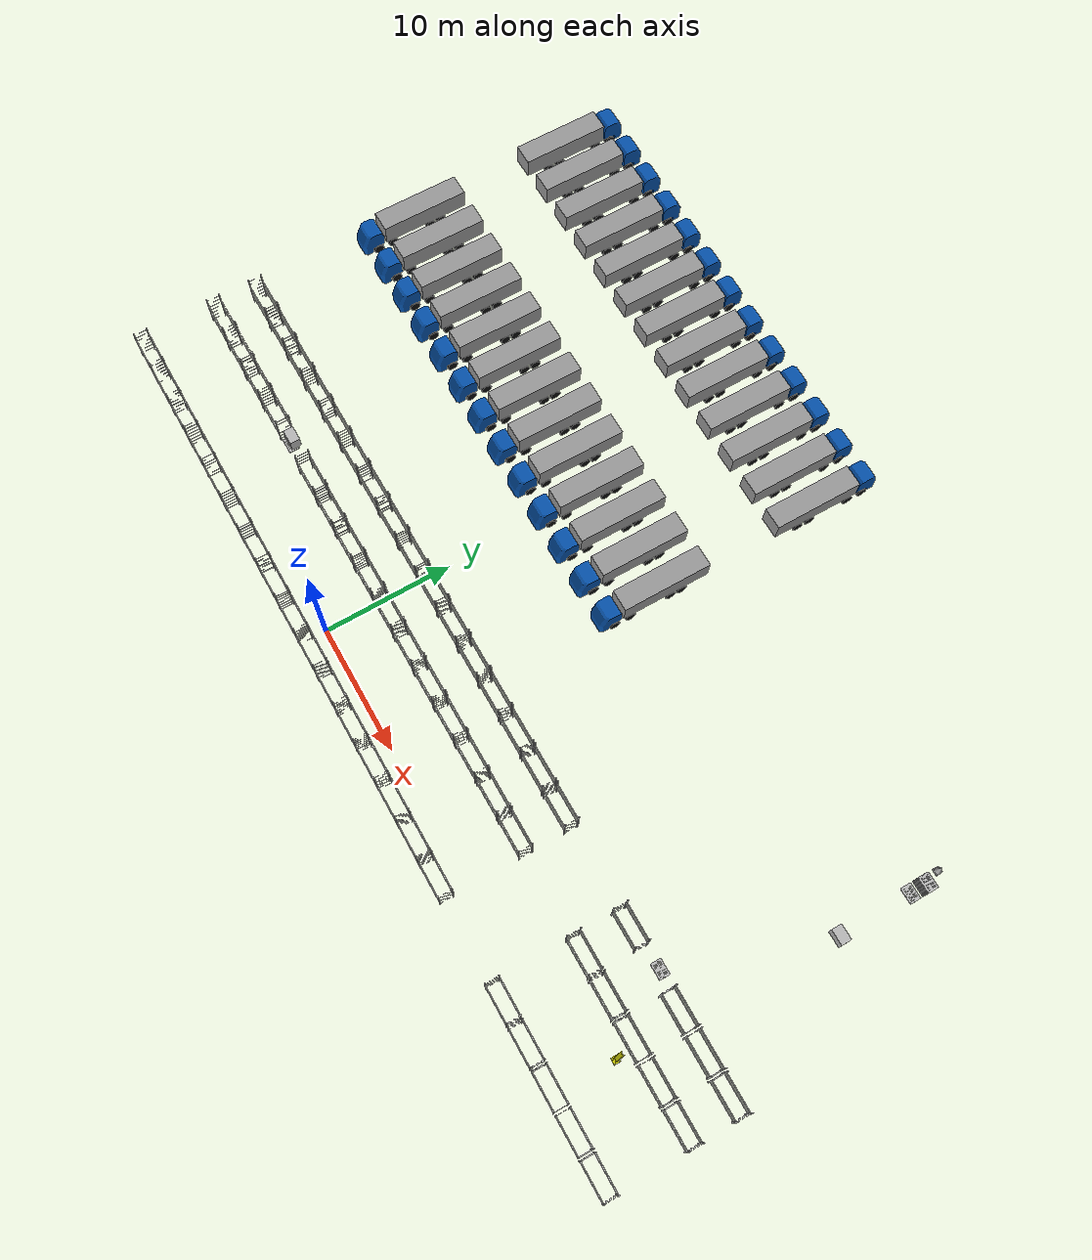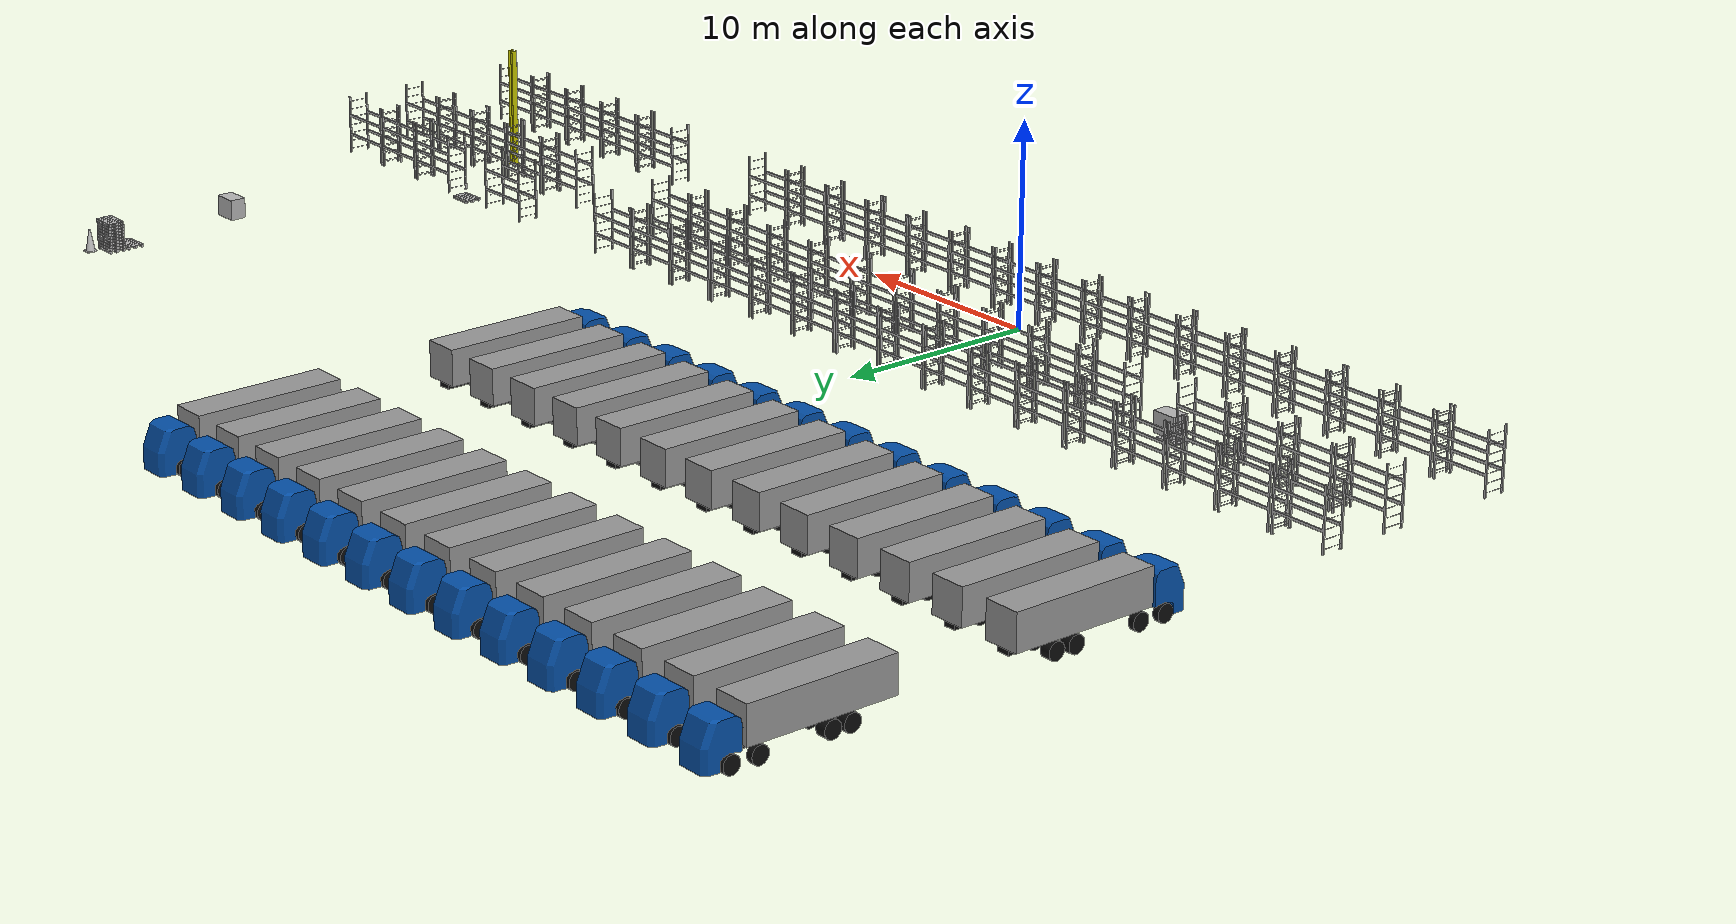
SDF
<sdf version="1.7">
 <world name="default">
  <include><uri>model://ground_collision</uri></include>
  <physics name="default_physics" default="0" type="ode">
   <real_time_factor>0.1</real_time_factor>
   <real_time_update_rate>1000</real_time_update_rate>
  </physics>
  <scene><ambient>1.0 1.0 1.0 1.0</ambient><background>0.8 0.8 0.8 1.0</background></scene>
  <light type="directional" name="sun">
   <cast_shadows>false</cast_shadows>
   <pose>0 0 10 0 0 0</pose>
   <diffuse>0.8 0.8 0.8 1</diffuse>
   <specular>0.2 0.2 0.2 1</specular>
   <attenuation>
    <range>1000</range>
    <constant>0.9</constant>
    <linear>0.01</linear>
    <quadratic>0.001</quadratic>
   </attenuation>
   <direction>0.1 0.1 -0.9</direction>
  </light>
  <include>
   <static>1</static>
   <uri>model://shelf</uri>
   <name>shelf_wall_1_2</name>
   <pose>-27 -2  0.001 0 0 0</pose>
  </include>
  <include>
   <static>1</static>
   <uri>model://shelf</uri>
   <name>shelf_wall_1_3</name>
   <pose>-24 -2  0.001 0 0 0</pose>
  </include>
  <include>
   <static>1</static>
   <uri>model://shelf</uri>
   <name>shelf_wall_1_4</name>
   <pose>-21 -2  0.001 0 0 0</pose>
  </include>
  <include>
   <static>1</static>
   <uri>model://shelf</uri>
   <name>shelf_wall_1_5</name>
   <pose>-18 -2  0.001 0 0 0</pose>
  </include>
  <include>
   <static>1</static>
   <uri>model://shelf</uri>
   <name>shelf_wall_1_6</name>
   <pose>-15 -2  0.001 0 0 0</pose>
  </include>
  <include>
   <static>1</static>
   <uri>model://shelf</uri>
   <name>shelf_wall_1_7</name>
   <pose>-12 -2  0.001 0 0 0</pose>
  </include>
  <include>
   <static>1</static>
   <uri>model://shelf</uri>
   <name>shelf_wall_1_8</name>
   <pose>-9 -2  0.001 0 0 0</pose>
  </include>
  <include>
   <static>1</static>
   <uri>model://shelf</uri>
   <name>shelf_wall_1_9</name>
   <pose>-6 -2  0.001 0 0 0</pose>
  </include>
  <include>
   <static>1</static>
   <uri>model://shelf</uri>
   <name>shelf_wall_1_10</name>
   <pose>-3 -2  0.001 0 0 0</pose>
  </include>
  <include>
   <static>1</static>
   <uri>model://shelf</uri>
   <name>shelf_wall_1_11</name>
   <pose>0 -2  0.001 0 0 0</pose>
  </include>
  <include>
   <static>1</static>
   <uri>model://shelf</uri>
   <name>shelf_wall_1_12</name>
   <pose>3 -2  0.001 0 0 0</pose>
  </include>
  <include>
   <static>1</static>
   <uri>model://shelf</uri>
   <name>shelf_wall_1_13</name>
   <pose>6 -2  0.001 0 0 0</pose>
  </include>
  <include>
   <static>1</static>
   <uri>model://shelf</uri>
   <name>shelf_wall_1_14</name>
   <pose>9 -2  0.001 0 0 0</pose>
  </include>
  <include>
   <static>1</static>
   <uri>model://shelf</uri>
   <name>shelf_wall_1_15</name>
   <pose>12 -2  0.001 0 0 0</pose>
  </include>
  <include>
   <static>1</static>
   <uri>model://shelf</uri>
   <name>shelf_wall_1_16</name>
   <pose>15 -2  0.001 0 0 0</pose>
  </include>
  <include>
   <static>1</static>
   <uri>model://shelf</uri>
   <name>shelf_wall_1_17</name>
   <pose>18 -2  0.001 0 0 0</pose>
  </include>
  <include>
   <static>1</static>
   <uri>model://shelf</uri>
   <name>shelf_wall_1_20</name>
   <pose>27 -2  0.001 0 0 0</pose>
  </include>
  <include>
   <static>1</static>
   <uri>model://shelf</uri>
   <name>shelf_wall_1_21</name>
   <pose>30 -2  0.001 0 0 0</pose>
  </include>
  <include>
   <static>1</static>
   <uri>model://shelf</uri>
   <name>shelf_wall_1_22</name>
   <pose>33 -2  0.001 0 0 0</pose>
  </include>
  <include>
   <static>1</static>
   <uri>model://shelf</uri>
   <name>shelf_wall_1_23</name>
   <pose>36 -2  0.001 0 0 0</pose>
  </include>
  <include>
   <static>1</static>
   <uri>model://shelf</uri>
   <name>shelf_wall_1_24</name>
   <pose>39 -2  0.001 0 0 0</pose>
  </include>
  <include>
   <static>1</static>
   <uri>model://shelf</uri>
   <name>shelf_wall_2_2</name>
   <pose>-27 4  0.001 0 0 0</pose>
  </include>
  <include>
   <static>1</static>
   <uri>model://shelf</uri>
   <name>shelf_wall_2_3</name>
   <pose>-24 4  0.001 0 0 0</pose>
  </include>
  <include>
   <static>1</static>
   <uri>model://shelf</uri>
   <name>shelf_wall_2_4</name>
   <pose>-21 4  0.001 0 0 0</pose>
  </include>
  <include>
   <static>1</static>
   <uri>model://shelf</uri>
   <name>shelf_wall_2_5</name>
   <pose>-18 4  0.001 0 0 0</pose>
  </include>
  <include>
   <static>1</static>
   <uri>model://shelf</uri>
   <name>shelf_wall_2_7</name>
   <pose>-12 4  0.001 0 0 0</pose>
  </include>
  <include>
   <static>1</static>
   <uri>model://shelf</uri>
   <name>shelf_wall_2_8</name>
   <pose>-9 4  0.001 0 0 0</pose>
  </include>
  <include>
   <static>1</static>
   <uri>model://shelf</uri>
   <name>shelf_wall_2_9</name>
   <pose>-6 4  0.001 0 0 0</pose>
  </include>
  <include>
   <static>1</static>
   <uri>model://shelf</uri>
   <name>shelf_wall_2_10</name>
   <pose>-3 4  0.001 0 0 0</pose>
  </include>
  <include>
   <static>1</static>
   <uri>model://shelf</uri>
   <name>shelf_wall_2_11</name>
   <pose>0 4  0.001 0 0 0</pose>
  </include>
  <include>
   <static>1</static>
   <uri>model://shelf</uri>
   <name>shelf_wall_2_12</name>
   <pose>3 4  0.001 0 0 0</pose>
  </include>
  <include>
   <static>1</static>
   <uri>model://shelf</uri>
   <name>shelf_wall_2_13</name>
   <pose>6 4  0.001 0 0 0</pose>
  </include>
  <include>
   <static>1</static>
   <uri>model://shelf</uri>
   <name>shelf_wall_2_14</name>
   <pose>9 4  0.001 0 0 0</pose>
  </include>
  <include>
   <static>1</static>
   <uri>model://shelf</uri>
   <name>shelf_wall_2_15</name>
   <pose>12 4  0.001 0 0 0</pose>
  </include>
  <include>
   <static>1</static>
   <uri>model://shelf</uri>
   <name>shelf_wall_2_16</name>
   <pose>15 4  0.001 0 0 0</pose>
  </include>
  <include>
   <static>1</static>
   <uri>model://shelf</uri>
   <name>shelf_wall_2_17</name>
   <pose>18 4  0.001 0 0 0</pose>
  </include>
  <include>
   <static>1</static>
   <uri>model://shelf</uri>
   <name>shelf_wall_2_20</name>
   <pose>27 4  0.001 0 0 0</pose>
  </include>
  <include>
   <static>1</static>
   <uri>model://shelf</uri>
   <name>shelf_wall_2_21</name>
   <pose>30 4  0.001 0 0 0</pose>
  </include>
  <include>
   <static>1</static>
   <uri>model://shelf</uri>
   <name>shelf_wall_2_22</name>
   <pose>33 4  0.001 0 0 0</pose>
  </include>
  <include>
   <static>1</static>
   <uri>model://shelf</uri>
   <name>shelf_wall_2_23</name>
   <pose>36 4  0.001 0 0 0</pose>
  </include>
  <include>
   <static>1</static>
   <uri>model://shelf</uri>
   <name>shelf_wall_2_24</name>
   <pose>39 4  0.001 0 0 0</pose>
  </include>
  <include>
   <static>1</static>
   <uri>model://shelf</uri>
   <name>shelf_wall_3_2</name>
   <pose>-27 7.5  0.001 0 0 0</pose>
  </include>
  <include>
   <static>1</static>
   <uri>model://shelf</uri>
   <name>shelf_wall_3_3</name>
   <pose>-24 7.5  0.001 0 0 0</pose>
  </include>
  <include>
   <static>1</static>
   <uri>model://shelf</uri>
   <name>shelf_wall_3_4</name>
   <pose>-21 7.5  0.001 0 0 0</pose>
  </include>
  <include>
   <static>1</static>
   <uri>model://shelf</uri>
   <name>shelf_wall_3_5</name>
   <pose>-18 7.5  0.001 0 0 0</pose>
  </include>
  <include>
   <static>1</static>
   <uri>model://shelf</uri>
   <name>shelf_wall_3_6</name>
   <pose>-15 7.5  0.001 0 0 0</pose>
  </include>
  <include>
   <static>1</static>
   <uri>model://shelf</uri>
   <name>shelf_wall_3_7</name>
   <pose>-12 7.5  0.001 0 0 0</pose>
  </include>
  <include>
   <static>1</static>
   <uri>model://shelf</uri>
   <name>shelf_wall_3_8</name>
   <pose>-9 7.5  0.001 0 0 0</pose>
  </include>
  <include>
   <static>1</static>
   <uri>model://shelf</uri>
   <name>shelf_wall_3_9</name>
   <pose>-6 7.5  0.001 0 0 0</pose>
  </include>
  <include>
   <static>1</static>
   <uri>model://shelf</uri>
   <name>shelf_wall_3_10</name>
   <pose>-3 7.5  0.001 0 0 0</pose>
  </include>
  <include>
   <static>1</static>
   <uri>model://shelf</uri>
   <name>shelf_wall_3_11</name>
   <pose>0 7.5  0.001 0 0 0</pose>
  </include>
  <include>
   <static>1</static>
   <uri>model://shelf</uri>
   <name>shelf_wall_3_12</name>
   <pose>3 7.5  0.001 0 0 0</pose>
  </include>
  <include>
   <static>1</static>
   <uri>model://shelf</uri>
   <name>shelf_wall_3_13</name>
   <pose>6 7.5  0.001 0 0 0</pose>
  </include>
  <include>
   <static>1</static>
   <uri>model://shelf</uri>
   <name>shelf_wall_3_14</name>
   <pose>9 7.5  0.001 0 0 0</pose>
  </include>
  <include>
   <static>1</static>
   <uri>model://shelf</uri>
   <name>shelf_wall_3_15</name>
   <pose>12 7.5  0.001 0 0 0</pose>
  </include>
  <include>
   <static>1</static>
   <uri>model://shelf</uri>
   <name>shelf_wall_3_16</name>
   <pose>15 7.5  0.001 0 0 0</pose>
  </include>
  <include>
   <static>1</static>
   <uri>model://shelf</uri>
   <name>shelf_wall_3_17</name>
   <pose>18 7.5  0.001 0 0 0</pose>
  </include>
  <include>
   <static>1</static>
   <uri>model://shelf</uri>
   <name>shelf_wall_3_20</name>
   <pose>27 7.5  0.001 0 0 0</pose>
  </include>
  <include>
   <static>1</static>
   <uri>model://shelf</uri>
   <name>shelf_wall_3_22</name>
   <pose>33 7.5  0.001 0 0 0</pose>
  </include>
  <include>
   <static>1</static>
   <uri>model://shelf</uri>
   <name>shelf_wall_3_23</name>
   <pose>36 7.5  0.001 0 0 0</pose>
  </include>
  <include>
   <static>1</static>
   <uri>model://shelf</uri>
   <name>shelf_wall_3_24</name>
   <pose>39 7.5  0.001 0 0 0</pose>
  </include>
  <include><uri>model://eur_pallet</uri><name>pallet_group_pickup</name><pose>-15 4 0.001 0 0 0</pose></include>
  <include>
   <uri>model://box_1185x785x1010</uri>
   <name>box_group_pickup</name>
   <pose>-15  5 0.4 0 0 0</pose>
  </include>
  <include>
   <uri>model://eur_pallet</uri>
   <name>pallet_group_dropoff</name>
   <pose>31 8 0.001 0 -0 0</pose>
  </include>
  <include>
   <static>1</static>
   <uri>model://support_pole</uri>
   <name>support_pole_move</name>
   <pose>35 3 0.001 0 0 0</pose>
  </include>
  <include><uri>model://box_1185x785x1010</uri><name>box_move</name><pose>35 20 0.4 0 0 0</pose></include>
  <include><uri>model://eur_pallet</uri><name>pallet_stack1_n1</name><pose>35 25 0.1 0 0 0</pose></include>
  <include><uri>model://eur_pallet</uri><name>pallet_stack2_n1</name><pose>35 26 0.1 0 0 0</pose></include>
  <include><uri>model://eur_pallet</uri><name>pallet_stack2_n2</name><pose>35 26 0.25 0 0 0</pose></include>
  <include><uri>model://eur_pallet</uri><name>pallet_stack2_n3</name><pose>35 26 0.4 0 0 0</pose></include>
  <include><uri>model://eur_pallet</uri><name>pallet_stack2_n4</name><pose>35 26 0.55 0 0 0</pose></include>
  <include><uri>model://eur_pallet</uri><name>pallet_stack2_n5</name><pose>35 26 0.7 0 0 0</pose></include>
  <include><uri>model://eur_pallet</uri><name>pallet_stack2_n6</name><pose>35 26 0.85 0 0 0</pose></include>
  <include><uri>model://eur_pallet</uri><name>pallet_stack2_n7</name><pose>35 26 1.0 0 0 0</pose></include>
  <include><uri>model://eur_pallet</uri><name>pallet_stack2_n8</name><pose>35 26 1.15 0 0 0</pose></include>
  <include><uri>model://eur_pallet</uri><name>pallet_stack2_n9</name><pose>35 26 1.3 0 0 0</pose></include>
  <include><uri>model://eur_pallet</uri><name>pallet_stack2_n10</name><pose>35 26 1.45 0 0 0</pose></include>
  <include><uri>model://truck</uri><name>truck1</name><pose>9 21 0.01 0 0 0</pose></include>
  <include><uri>model://truck</uri><name>truck2</name><pose>6 21 0.01 0 0 0</pose></include>
  <include><uri>model://truck</uri><name>truck3</name><pose>3 21 0.01 0 0 0</pose></include>
  <include><uri>model://truck</uri><name>truck4</name><pose>0 21 0.01 0 0 0</pose></include>
  <include><uri>model://truck</uri><name>truck5</name><pose>-3 21 0.01 0 0 0</pose></include>
  <include><uri>model://truck</uri><name>truck6</name><pose>-6 21 0.01 0 0 0</pose></include>
  <include><uri>model://truck</uri><name>truck7</name><pose>-9 21 0.01 0 0 0</pose></include>
  <include><uri>model://truck</uri><name>truck8</name><pose>-12 21 0.01 0 0 0</pose></include>
  <include><uri>model://truck</uri><name>truck9</name><pose>-15 21 0.01 0 0 0</pose></include>
  <include><uri>model://truck</uri><name>truck10</name><pose>-18 21 0.01 0 0 0</pose></include>
  <include><uri>model://truck</uri><name>truck11</name><pose>-21 21 0.01 0 0 0</pose></include>
  <include><uri>model://truck</uri><name>truck12</name><pose>-24 21 0.01 0 0 0</pose></include>
  <include><uri>model://truck</uri><name>truck13</name><pose>-27 21 0.01 0 0 0</pose></include>
  <include><uri>model://truck</uri><name>truck14</name><pose>9 36 0.01 0 0 3.1415926535</pose></include>
  <include><uri>model://truck</uri><name>truck15</name><pose>6 36 0.01 0 0 3.1415926535</pose></include>
  <include><uri>model://truck</uri><name>truck16</name><pose>3 36 0.01 0 0 3.1415926535</pose></include>
  <include><uri>model://truck</uri><name>truck17</name><pose>0 36 0.01 0 0 3.1415926535</pose></include>
  <include><uri>model://truck</uri><name>truck18</name><pose>-3 36 0.01 0 0 3.1415926535</pose></include>
  <include><uri>model://truck</uri><name>truck19</name><pose>-6 36 0.01 0 0 3.1415926535</pose></include>
  <include><uri>model://truck</uri><name>truck20</name><pose>-9 36 0.01 0 0 3.1415926535</pose></include>
  <include><uri>model://truck</uri><name>truck21</name><pose>-12 36 0.01 0 0 3.1415926535</pose></include>
  <include><uri>model://truck</uri><name>truck22</name><pose>-15 36 0.01 0 0 3.1415926535</pose></include>
  <include><uri>model://truck</uri><name>truck23</name><pose>-18 36 0.01 0 0 3.1415926535</pose></include>
  <include><uri>model://truck</uri><name>truck24</name><pose>-21 36 0.01 0 0 3.1415926535</pose></include>
  <include><uri>model://truck</uri><name>truck25</name><pose>-24 36 0.01 0 0 3.1415926535</pose></include>
  <include><uri>model://truck</uri><name>truck26</name><pose>-27 36 0.01 0 0 3.1415926535</pose></include>
  <include><uri>model://traffic_cone</uri><name>traffic_cone</name><pose>35 28 0.4 0 0 0</pose></include>
  <light name="user_spot_light_move" type="spot">
   <pose>20.0 20.0 1 0 0 0</pose>
   <diffuse>0.5 0.5 0.5 1</diffuse>
   <specular>0.1 0.1 0.1 1</specular>
   <direction>0 0 -1</direction>
   <attenuation>
    <range>20</range>
    <constant>0.5</constant>
    <linear>0.01</linear>
    <quadratic>0.001</quadratic>
   </attenuation>
   <cast_shadows>0</cast_shadows>
   <spot><inner_angle>0.6</inner_angle><outer_angle>1</outer_angle><falloff>1</falloff></spot>
  </light>
  <plugin name="gazebo_ros_state" filename="libgazebo_ros_state.so">
   <ros><namespace>/gazebo</namespace></ros>
   <update_rate>1.0</update_rate>
  </plugin>
 </world>
</sdf>

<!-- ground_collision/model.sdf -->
<sdf version="1.9">
<model name="ground_collision">
  <static>true</static>
    <link name="link">
      <collision name="collision">
        <geometry>
          <plane>
            <normal>0 0 1</normal>
            <size>100 100</size>
          </plane>
        </geometry>
        <surface>
          <friction>
            <ode>
              <mu>100</mu>
              <mu2>50</mu2>
            </ode>
          </friction>
        </surface>
      </collision>
    </link>
  </model>
</sdf>

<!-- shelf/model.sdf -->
<sdf version="1.9">
  <model name="shelf" canonical_link="node0_link">

    <link name="node0_link">
      <inertial>
        <inertia>
          <ixx>24.93052</ixx>
          <ixy>0</ixy>
          <ixz>0</ixz>
          <iyy>54.42990</iyy>
          <iyz>0</iyz>
          <izz>42.61899</izz>
        </inertia>
        <pose>1.44044 0.43986 1.49318 0 0 0</pose>
        <mass>40.00000</mass>
      </inertial>

      <visual name="node0">
        <pose>0 0 0 0 0 0</pose>
        <geometry>
          <mesh>
            <uri>model://shelf/meshes/textured_shelf_low_poly.dae</uri>
            <scale>1.00000 1.00000 1.00000</scale>
          </mesh>
        </geometry>
      </visual>
    </link>

    <plugin filename="gz-sim-label-system" name="gz::sim::systems::Label">
      <label>10</label>
    </plugin>

    <link name="collision_shelf_1">
      <inertial>
        <mass>0.0001</mass>
        <inertia>
          <ixx>1e-6</ixx>
          <iyy>1e-6</iyy>
          <izz>1e-6</izz>
          <ixy>0</ixy>
          <ixz>0</ixz>
          <iyz>0</iyz>
        </inertia>
      </inertial>
      <collision name="collision_shelf_1">
        <pose>1.45 0.45 0 0 0 0</pose>
        <geometry>
          <box>
            <size>2.7 1.2 0.13</size>
          </box>
        </geometry>
        <surface>
          <friction>
            <ode>
              <mu>1</mu>
              <mu2>1</mu2>
              <slip1>0</slip1>
              <slip2>0</slip2>
            </ode>
          </friction>
          <contact>
            <ode>
              <soft_cfm>0</soft_cfm>
              <soft_erp>0.2</soft_erp>
              <kp>1e+13</kp>
              <kd>1</kd>
              <max_vel>0.01</max_vel>
              <min_depth>0</min_depth>
            </ode>
          </contact>
        </surface>
      </collision>
    </link>

    <link name="collision_shelf_2">
      <inertial>
        <mass>0.0001</mass>
        <inertia>
          <ixx>1e-6</ixx>
          <iyy>1e-6</iyy>
          <izz>1e-6</izz>
          <ixy>0</ixy>
          <ixz>0</ixz>
          <iyz>0</iyz>
        </inertia>
      </inertial>
      <collision name="collision_shelf_2">
        <pose>1.45 0.45 1 0 0 0</pose>
        <geometry>
          <box>
            <size>2.7 1.2 0.13</size>
          </box>
        </geometry>
        <surface>
          <friction>
            <ode>
              <mu>1</mu>
              <mu2>1</mu2>
              <slip1>0</slip1>
              <slip2>0</slip2>
            </ode>
          </friction>
          <contact>
            <ode>
              <soft_cfm>0</soft_cfm>
              <soft_erp>0.2</soft_erp>
              <kp>1e+13</kp>
              <kd>1</kd>
              <max_vel>0.01</max_vel>
              <min_depth>0</min_depth>
            </ode>
          </contact>
        </surface>
      </collision>
    </link>

    <link name="collision_shelf_3">
      <inertial>
        <mass>0.0001</mass>
        <inertia>
          <ixx>1e-6</ixx>
          <iyy>1e-6</iyy>
          <izz>1e-6</izz>
          <ixy>0</ixy>
          <ixz>0</ixz>
          <iyz>0</iyz>
        </inertia>
      </inertial>
      <collision name="collision_shelf_3">
        <pose>1.45 0.45 2 0 0 0</pose>
        <geometry>
          <box>
            <size>2.7 1.2 0.13</size>
          </box>
        </geometry>
        <surface>
          <friction>
            <ode>
              <mu>1</mu>
              <mu2>1</mu2>
              <slip1>0</slip1>
              <slip2>0</slip2>
            </ode>
          </friction>
          <contact>
            <ode>
              <soft_cfm>0</soft_cfm>
              <soft_erp>0.2</soft_erp>
              <kp>1e+13</kp>
              <kd>1</kd>
              <max_vel>0.01</max_vel>
              <min_depth>0</min_depth>
            </ode>
          </contact>
        </surface>
      </collision>
    </link>

    <joint name="fixed_joint_1" type="fixed">
      <parent>node0_link</parent>
      <child>collision_shelf_1</child>
    </joint>

    <joint name="fixed_joint_2" type="fixed">
      <parent>node0_link</parent>
      <child>collision_shelf_2</child>
    </joint>

    <joint name="fixed_joint_3" type="fixed">
      <parent>node0_link</parent>
      <child>collision_shelf_3</child>
    </joint>

  </model>
</sdf>

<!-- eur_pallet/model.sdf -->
<sdf version="1.9">
<model name="eur_pallet" canonical_link="node0_link">
  <link name="node0_link">
    <visual name="node0">
      <pose>0 0 0 0 0 0</pose>
      <geometry>
        <mesh>
          <uri>model://eur_pallet/meshes/textured_pallet.dae</uri>
          <scale>1.00000 1.00000 1.00000</scale>
        </mesh>
      </geometry>
    </visual>
  </link>

  <link name="collision_holder_1">
    <inertial>
      <inertia>
        <ixx>0.006</ixx>
        <ixy>0</ixy>
        <ixz>0</ixz>
        <iyy>0.435</iyy>
        <iyz>0</iyz>
        <izz>0.435</izz>
      </inertia>
      <pose>0.6 0.05 0.05 0 0 0</pose>
      <mass>3.6</mass>
    </inertial>
    <collision name="collision_holder_1">
      <pose>0.6 0.05 0.05 0.0 0.0 0.0</pose>
      <geometry>
        <box>
          <size>1.2 0.1 0.1</size>
        </box>
      </geometry>
      <surface>
      <friction>
        <ode>
          <mu>1</mu>
          <mu2>1</mu2>
          <slip1>0</slip1>
          <slip2>0</slip2>
        </ode>
      </friction>
      <contact>
        <ode>
          <soft_cfm>1e-5</soft_cfm>
          <soft_erp>0.2</soft_erp>
          <kp>1e+13</kp>
          <kd>1</kd>
          <max_vel>0.01</max_vel>
          <min_depth>0</min_depth>
        </ode>
      </contact>
      </surface>
    </collision>
  </link>

  <link name="collision_holder_2">
    <inertial>
      <inertia>
        <ixx>0.013496</ixx>
        <ixy>0</ixy>
        <ixz>0</ixz>
        <iyy>0.6308</iyy>
        <iyz>0</iyz>
        <izz>0.6355</izz>
      </inertia>
      <pose>0.6 0.4 0.05 0 0 0</pose>
      <mass>5.22</mass>
    </inertial>
    <collision name="collision_holder_2">
      <pose>0.6 0.4 0.05 0 0 0</pose>
      <geometry>
        <box>
          <size>1.2 0.145 0.1</size>
        </box>
      </geometry>
      <surface>
      <friction>
        <ode>
          <mu>1</mu>
          <mu2>1</mu2>
          <slip1>0</slip1>
          <slip2>0</slip2>
        </ode>
      </friction>
      <contact>
        <ode>
          <soft_cfm>1e-5</soft_cfm>
          <soft_erp>0.2</soft_erp>
          <kp>1e+13</kp>
          <kd>1</kd>
          <max_vel>0.01</max_vel>
          <min_depth>0</min_depth>
        </ode>
      </contact>
      </surface>

    </collision>
  </link>

  <link name="collision_holder_3">
    <inertial>
      <inertia>
        <ixx>0.006</ixx>
        <ixy>0</ixy>
        <ixz>0</ixz>
        <iyy>0.435</iyy>
        <iyz>0</iyz>
        <izz>0.435</izz>
      </inertia>
      <pose>0.6 0.75 0.05 0 0 0</pose>
      <mass>3.6</mass>
    </inertial>
    <collision name="collision_holder_3">
      <pose>0.6 0.75 0.05 0 0 0</pose>
      <geometry>
        <box>
          <size>1.2 0.1 0.1</size>
        </box>
      </geometry>
      <surface>
      <friction>
        <ode>
          <mu>1</mu>
          <mu2>1</mu2>
          <slip1>0</slip1>
          <slip2>0</slip2>
        </ode>
      </friction>
      <contact>
        <ode>
          <soft_cfm>1e-5</soft_cfm>
          <soft_erp>0.2</soft_erp>
          <kp>1e+13</kp>
          <kd>1</kd>
          <max_vel>0.01</max_vel>
          <min_depth>0</min_depth>
        </ode>
      </contact>
      </surface>

    </collision>
  </link>

  <link name="collision_holder_surface">
    <inertial>
      <inertia>
        <ixx>0.6779</ixx>
        <ixy>0</ixy>
        <ixz>0</ixz>
        <iyy>1.5227</iyy>
        <iyz>0</iyz>
        <izz>2.1965</izz>
      </inertia>
      <pose>0.6 0.4 0.122 0 0 0</pose>
      <mass>12.672</mass>
    </inertial>
    <collision name="collision_holder_surface">
      <pose>0.6 0.4 0.122 0 0 0</pose>
      <geometry>
        <box>
          <size>1.2 0.8 0.044</size>
        </box>
      </geometry>
      <surface>
      <friction>
        <ode>
          <mu>1</mu>
          <mu2>1</mu2>
          <slip1>0</slip1>
          <slip2>0</slip2>
        </ode>
      </friction>
      <contact>
        <ode>
          <soft_cfm>1e-5</soft_cfm>
          <soft_erp>0.2</soft_erp>
          <kp>1e+13</kp>
          <kd>1</kd>
          <max_vel>0.01</max_vel>
          <min_depth>0</min_depth>
        </ode>
      </contact>
      </surface>

    </collision>
  </link>

  <joint name="fixed_joint_2" type="fixed">
    <parent>node0_link</parent>
    <child>collision_holder_2</child>
  </joint>

  <joint name="fixed_joint_3" type="fixed">
    <parent>node0_link</parent>
    <child>collision_holder_3</child>
  </joint>

  <joint name="fixed_joint_1" type="fixed">
    <parent>node0_link</parent>
    <child>collision_holder_1</child>
  </joint>

  <joint name="fixed_joint_surface" type="fixed">
    <parent>node0_link</parent>
    <child>collision_holder_surface</child>
  </joint>

  <plugin filename="gz-sim-label-system" name="gz::sim::systems::Label">
    <label>3</label>
  </plugin>

</model>
</sdf>

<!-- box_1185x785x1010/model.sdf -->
<sdf version="1.9">
<model name="box_1185x785x1010" canonical_link="node0_link">
  <link name="node0_link">
    <collision name="node0_collision">
      <pose>0.59250 -0.39250 0.50500 0 0 0</pose>
      <geometry>
        <box>
          <size>1.185 0.785 1.01</size>
        </box>
      </geometry>

      <surface>
      <friction>
        <ode>
          <mu>1</mu>
          <mu2>1</mu2>
          <slip1>0</slip1>
          <slip2>0</slip2>
        </ode>
      </friction>
      <contact>
        <ode>
          <soft_cfm>0</soft_cfm>
          <soft_erp>0.2</soft_erp>
          <kp>1e+13</kp>
          <kd>1</kd>
          <max_vel>0.01</max_vel>
          <min_depth>0</min_depth>
        </ode>
      </contact>
      </surface>

    </collision>
    <inertial>
      <inertia>
        <ixx>8.508996</ixx>
        <ixy>-0</ixy>
        <ixz>-0</ixz>
        <iyy>12.70658</iyy>
        <iyz>-0</iyz>
        <izz>10.59254</izz>
      </inertia>
      <pose>0.59250 -0.39250 0.50500 0 0 0</pose>
      <mass>50.0</mass>
    </inertial>
    <visual name="node0">
      <pose>0 0 0 0 0 0</pose>
      <geometry>
        <mesh>
          <uri>model://box_1185x785x1010/meshes/textured_1185x785x1010_low_poly.dae</uri>
          <scale>1.00000 1.00000 1.00000</scale>
        </mesh>
      </geometry>
    </visual>
  </link>
  <plugin filename="gz-sim-label-system" name="gz::sim::systems::Label">
    <label>4</label>
  </plugin>
</model>
</sdf>

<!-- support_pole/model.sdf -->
<sdf version="1.9">
<model name="support_pole" canonical_link="node0_link">
  <link name="node0_link">
    <collision name="node0_collision">
      <pose>0 0 0 0 0 0</pose>
      <geometry>
        <mesh>
          <uri>meshes/Body.dae</uri>
          <scale>1.00000 1.00000 1.00000</scale>
        </mesh>
      </geometry>
      <surface>
        <contact><ode>  <max_vel>0.001</max_vel><min_depth>0.01</min_depth><kd>1e15</kd>  </ode></contact>
      </surface>
    </collision>
    <inertial>
      <inertia>
        <ixx>1493.69948</ixx>
        <ixy>-0</ixy>
        <ixz>0.05031</ixz>
        <iyy>1494.98147</iyy>
        <iyz>0.01981</iyz>
        <izz>3.31750</izz>
      </inertia>
      <pose>0 -0 2.87289 0 0 0</pose>
      <mass>200.0</mass>
    </inertial>
    <visual name="node0">
      <material>
        <diffuse>0.80000 0.80000 0.00000 1.00000</diffuse>
        <specular>0.40000 0.40000 0.40000 0.49804</specular>
        <emissive>0 0 0 1.00000</emissive>
      </material>
      <pose>0 0 0 0 0 0</pose>
      <geometry>
        <mesh>
          <uri>model://support_pole/meshes/Body_low_poly.dae</uri>
          <scale>1.00000 1.00000 1.00000</scale>
        </mesh>
      </geometry>
    </visual>
  </link>
  <plugin filename="gz-sim-label-system" name="gz::sim::systems::Label">
    <label>4</label>
  </plugin>
</model>
</sdf>

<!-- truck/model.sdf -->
<sdf version="1.7">
  <model name="truck">
    <static>false</static>

    <!-- Link Definition -->
    <link name="head">
      <!-- Visual Element -->
      <visual name="head_visual">
        <geometry>
          <mesh>
            <uri>model://truck/meshes/head.dae</uri>
            <scale>1 1 1</scale>
          </mesh>
        </geometry>
        <material>
          <ambient>0.02 0.32 0.67 1</ambient>
          <diffuse>0.02 0.32 0.67 1</diffuse>
          <emissive>0.1 0 0.1 1</emissive>
        </material>
      </visual>

      <!-- Collision Element -->
      <collision name="head_collision">
        <geometry>
          <mesh>
            <uri>model://truck/meshes/head.dae</uri>
            <scale>1 1 1</scale>
          </mesh>
        </geometry>
        <surface>
          <contact>
            <ode/>
          </contact>
          <bounce/>
          <friction>
            <ode/>
          </friction>
        </surface>
      </collision>

      <!-- Inertial Properties -->
      <inertial>
        <mass>10.0</mass>
        <inertia>
          <ixx>1.0</ixx>
          <ixy>0.0</ixy>
          <ixz>0.0</ixz>
          <iyy>1.0</iyy>
          <iyz>0.0</iyz>
          <izz>1.0</izz>
        </inertia>
      </inertial>
    </link>
    <link name="box">
      <!-- Visual Element -->
      <visual name="box_visual">
        <geometry>
          <mesh>
            <uri>model://truck/meshes/box.dae</uri>
            <scale>1 1 1</scale>
          </mesh>
        </geometry>
        <material>
            <ambient>0.6 0.6 0.6 1</ambient>
            <diffuse>0.6 0.6 0.6 1</diffuse>
            <emissive>0.1 0.1 0.1 1</emissive>
        </material>
      </visual>

      <!-- Collision Element -->
      <collision name="box_collision">
        <geometry>
          <mesh>
            <uri>model://truck/meshes/box.dae</uri>
            <scale>1 1 1</scale>
          </mesh>
        </geometry>
        <surface>
          <contact>
            <ode/>
          </contact>
          <bounce/>
          <friction>
            <ode/>
          </friction>
        </surface>
      </collision>

      <!-- Inertial Properties -->
      <inertial>
        <mass>10.0</mass>
        <inertia>
          <ixx>1.0</ixx>
          <ixy>0.0</ixy>
          <ixz>0.0</ixz>
          <iyy>1.0</iyy>
          <iyz>0.0</iyz>
          <izz>1.0</izz>
        </inertia>
      </inertial>
    </link>

    <link name="wheels">
      <!-- Visual Element -->
      <visual name="wheels_visual">
        <geometry>
          <mesh>
            <uri>model://truck/meshes/wheels.dae</uri>
            <scale>1 1 1</scale>
          </mesh>
        </geometry>
        <material>
          <ambient>0.05 0.05 0.05 1</ambient>
          <diffuse>0.05 0.05 0.05 1</diffuse>
          <emissive>0.1 0.1 0.1 1</emissive>
        </material>
      </visual>

      <!-- Collision Element -->
      <collision name="wheels_collision">
        <geometry>
          <mesh>
            <uri>model://truck/meshes/wheels.dae</uri>
            <scale>1 1 1</scale>
          </mesh>
        </geometry>
        <surface>
          <contact>
            <ode/>
          </contact>
          <bounce/>
          <friction>
            <ode/>
          </friction>
        </surface>
      </collision>

      <!-- Inertial Properties -->
      <inertial>
        <mass>10.0</mass>
        <inertia>
          <ixx>1.0</ixx>
          <ixy>0.0</ixy>
          <ixz>0.0</ixz>
          <iyy>1.0</iyy>
          <iyz>0.0</iyz>
          <izz>1.0</izz>
        </inertia>
      </inertial>
    </link>

    <link name="bottom">
      <!-- Visual Element -->
      <visual name="bottom_visual">
        <geometry>
          <mesh>
            <uri>model://truck/meshes/bottom.dae</uri>
            <scale>1 1 1</scale>
          </mesh>
        </geometry>
        <material>
          <ambient>0.05 0.05 0.05 1</ambient>
          <diffuse>0.05 0.05 0.05 1</diffuse>
          <emissive>0.1 0.1 0.1 1</emissive>
        </material>
      </visual>

      <!-- Collision Element -->
      <collision name="bottom_collision">
        <geometry>
          <mesh>
            <uri>model://truck/meshes/bottom.dae</uri>
            <scale>1 1 1</scale>
          </mesh>
        </geometry>
        <surface>
          <contact>
            <ode/>
          </contact>
          <bounce/>
          <friction>
            <ode/>
          </friction>
        </surface>
      </collision>

      <!-- Inertial Properties -->
      <inertial>
        <mass>10.0</mass>
        <inertia>
          <ixx>1.0</ixx>
          <ixy>0.0</ixy>
          <ixz>0.0</ixz>
          <iyy>1.0</iyy>
          <iyz>0.0</iyz>
          <izz>1.0</izz>
        </inertia>
      </inertial>
    </link>
    <!-- Joint Definitions -->
    <joint name="head_to_box" type="fixed">
      <parent>head</parent>
      <child>box</child>
    </joint>

    <joint name="head_to_wheels" type="fixed">
      <parent>head</parent>
      <child>wheels</child>
    </joint>

    <joint name="head_to_bottom" type="fixed">
      <parent>head</parent>
      <child>bottom</child>
    </joint>
  </model>
</sdf>

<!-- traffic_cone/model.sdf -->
<sdf version="1.7">
<model name="traffic_cone" canonical_link="node0_link">
  <link name="node0_link">
    <collision name="node0_collision">
      <pose relative_to="node0_link">0.00000 0.00000 0.00000 0.00000 0.00000 0.00000</pose>
      <geometry>
        <mesh>
          <uri>meshes/Body.dae</uri>
          <scale>1.00000 1.00000 1.00000</scale>
        </mesh>
      </geometry>
      <surface>
        <contact><ode>  <max_vel>0.001</max_vel><min_depth>0.01</min_depth><kd>1e15</kd>  </ode></contact>
      </surface>
    </collision>
    <inertial>
      <inertia>
        <ixx>1.94536</ixx>
        <ixy>0.00000</ixy>
        <ixz>0.00544</ixz>
        <iyy>1.94538</iyy>
        <iyz>0.00000</iyz>
        <izz>0.25007</izz>
      </inertia>
      <pose relative_to="node0_link">0.26000 -0.26000 0.30336 0.00000 0.00000 0.00000</pose>
      <mass>10.00000</mass>
    </inertial>
    <visual name="node0">
      <material>
        <diffuse>0.80000 0.80000 0.80000 1.00000</diffuse>
        <specular>0.40000 0.40000 0.40000 0.49804</specular>
        <emissive>0.00000 0.00000 0.00000 1.00000</emissive>
      </material>
      <pose relative_to="node0_link">0.00000 0.00000 0.00000 0.00000 0.00000 0.00000</pose>
      <geometry>
        <mesh>
          <uri>meshes/Body.dae</uri>
          <scale>1.00000 1.00000 1.00000</scale>
        </mesh>
      </geometry>
    </visual>
  </link>
</model>
</sdf>
